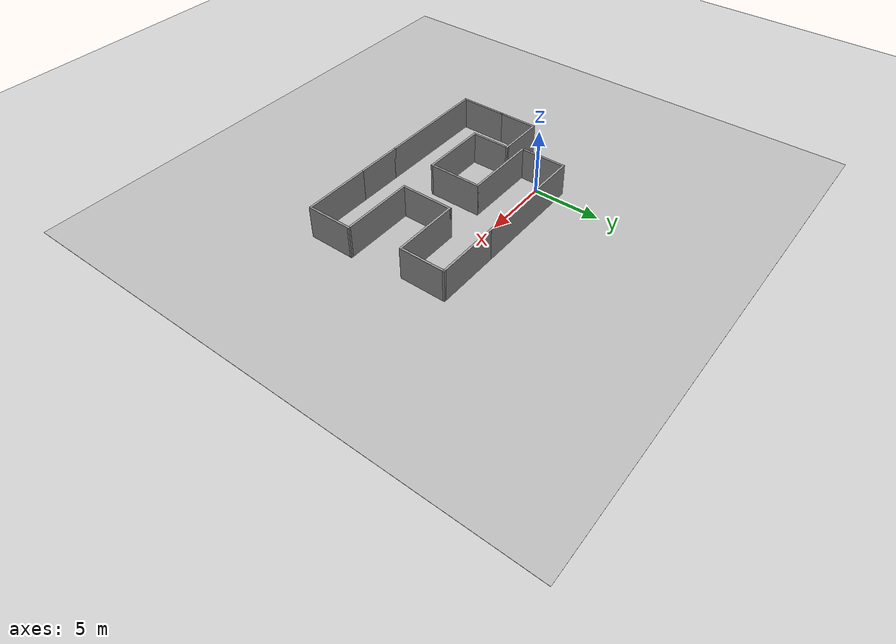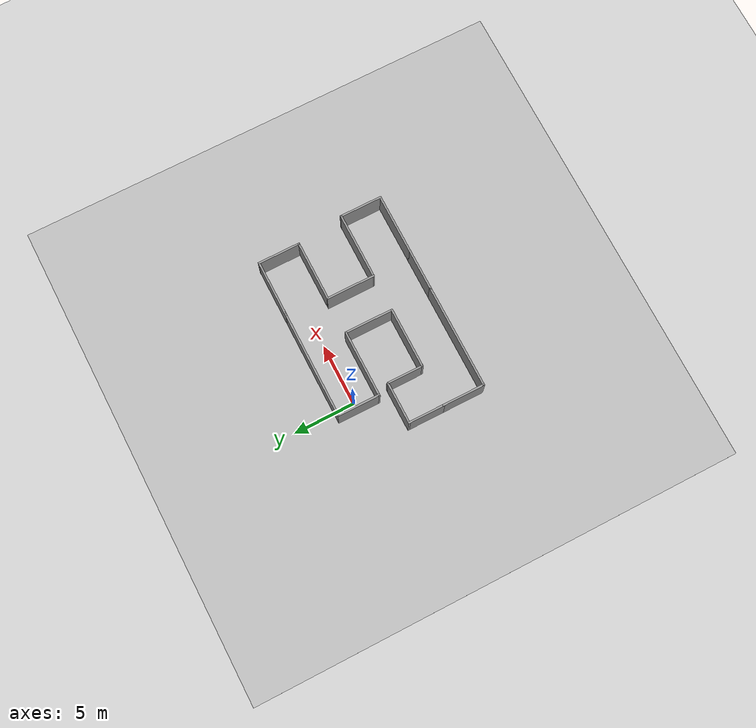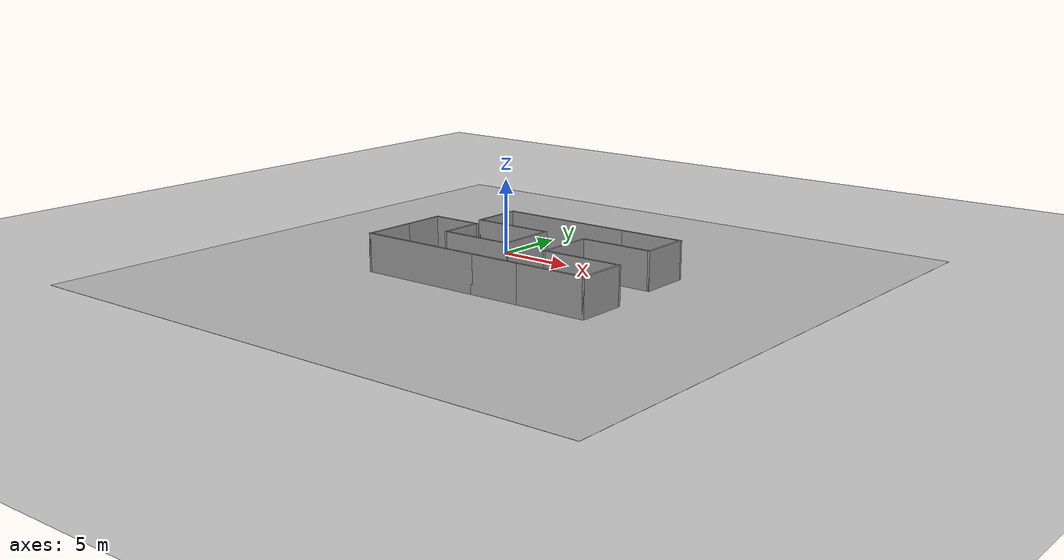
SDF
<sdf version="1.7">
 <world name="lab_world">
  <gravity>0 0 -9.8</gravity>
  <model name="ground_plane">
   <static>1</static>
   <link name="link">
    <collision name="collision">
     <geometry><plane><normal>0 0 1</normal><size>100 100</size></plane></geometry>
     <surface><friction><ode><mu>100</mu><mu2>50</mu2></ode></friction></surface>
    </collision>
    <visual name="visual">
     <cast_shadows>0</cast_shadows>
     <geometry><plane><normal>0 0 1</normal><size>100 100</size></plane></geometry>
     <material>
      <script><uri>file://media/materials/scripts/gazebo.material</uri><name>Gazebo/Grey</name></script>
     </material>
    </visual>
   </link>
  </model>
  <light name="sun" type="directional">
   <pose>0 0 10 0 -0 0</pose>
   <diffuse>0.8 0.8 0.8 1</diffuse>
   <specular>0.2 0.2 0.2 1</specular>
   <attenuation>
    <range>1000</range>
    <constant>0.9</constant>
    <linear>0.01</linear>
    <quadratic>0.001</quadratic>
   </attenuation>
   <direction>-0.5 0.1 -0.9</direction>
   <spot><inner_angle>0</inner_angle><outer_angle>0</outer_angle><falloff>0</falloff></spot>
  </light>
  <magnetic_field>6e-06 2.3e-05 -4.2e-05</magnetic_field>
  <atmosphere type="adiabatic"/>
  <physics type="ode">
   <max_step_size>0.001</max_step_size>
   <real_time_factor>1</real_time_factor>
   <real_time_update_rate>1000</real_time_update_rate>
  </physics>
  <scene><ambient>0.4 0.4 0.4 1</ambient><background>0.7 0.7 0.7 1</background><shadows>1</shadows></scene>
  <spherical_coordinates>
   <surface_model>EARTH_WGS84</surface_model>
   <latitude_deg>0</latitude_deg>
   <longitude_deg>0</longitude_deg>
   <elevation>0</elevation>
   <heading_deg>0</heading_deg>
  </spherical_coordinates>
  <model name="place3_0">
   <pose>4.675 -3.665 0 0 -0 0</pose>
   <link name="Wall_10">
    <collision name="Wall_10_Collision">
     <geometry><box><size>3.5 0.15 2.5</size></box></geometry>
     <pose>0 0 1.25 0 -0 0</pose>
    </collision>
    <visual name="Wall_10_Visual">
     <pose>0 0 1.25 0 -0 0</pose>
     <geometry><box><size>3.5 0.15 2.5</size></box></geometry>
     <material>
      <script><uri>file://media/materials/scripts/gazebo.material</uri><name>Gazebo/Grey</name></script>
      <ambient>1 1 1 1</ambient>
     </material>
     <meta><layer>0</layer></meta>
    </visual>
    <pose>-6.6 0.925 0 0 -0 3.14159</pose>
   </link>
   <link name="Wall_11">
    <collision name="Wall_11_Collision">
     <geometry><box><size>3 0.15 2.5</size></box></geometry>
     <pose>0 0 1.25 0 -0 0</pose>
    </collision>
    <visual name="Wall_11_Visual">
     <pose>0 0 1.25 0 -0 0</pose>
     <geometry><box><size>3 0.15 2.5</size></box></geometry>
     <material>
      <script><uri>file://media/materials/scripts/gazebo.material</uri><name>Gazebo/Grey</name></script>
      <ambient>1 1 1 1</ambient>
     </material>
     <meta><layer>0</layer></meta>
    </visual>
    <pose>-8.275 -0.5 0 0 -0 -1.5708</pose>
   </link>
   <link name="Wall_12">
    <collision name="Wall_12_Collision">
     <geometry><box><size>3.5 0.15 2.5</size></box></geometry>
     <pose>0 0 1.25 0 -0 0</pose>
    </collision>
    <visual name="Wall_12_Visual">
     <pose>0 0 1.25 0 -0 0</pose>
     <geometry><box><size>3.5 0.15 2.5</size></box></geometry>
     <material>
      <script><uri>file://media/materials/scripts/gazebo.material</uri><name>Gazebo/Grey</name></script>
      <ambient>1 1 1 1</ambient>
     </material>
     <meta><layer>0</layer></meta>
    </visual>
    <pose>-8.275 -3.6 0 0 -0 -1.5708</pose>
   </link>
   <link name="Wall_13">
    <collision name="Wall_13_Collision">
     <geometry><box><size>8.5 0.15 2.5</size></box></geometry>
     <pose>0 0 1.25 0 -0 0</pose>
    </collision>
    <visual name="Wall_13_Visual">
     <pose>0 0 1.25 0 -0 0</pose>
     <geometry><box><size>8.5 0.15 2.5</size></box></geometry>
     <material>
      <script><uri>file://media/materials/scripts/gazebo.material</uri><name>Gazebo/Grey</name></script>
      <ambient>1 1 1 1</ambient>
     </material>
     <meta><layer>0</layer></meta>
    </visual>
    <pose>-4.1 -5.275 0 0 -0 0</pose>
   </link>
   <link name="Wall_14">
    <collision name="Wall_14_Collision">
     <geometry><box><size>3.5 0.15 2.5</size></box></geometry>
     <pose>0 0 1.25 0 -0 0</pose>
    </collision>
    <visual name="Wall_14_Visual">
     <pose>0 0 1.25 0 -0 0</pose>
     <geometry><box><size>3.5 0.15 2.5</size></box></geometry>
     <material>
      <script><uri>file://media/materials/scripts/gazebo.material</uri><name>Gazebo/Grey</name></script>
      <ambient>1 1 1 1</ambient>
     </material>
     <meta><layer>0</layer></meta>
    </visual>
    <pose>1.75 -5.275 0 0 -0 0</pose>
   </link>
   <link name="Wall_15">
    <collision name="Wall_15_Collision">
     <geometry><box><size>5 0.15 2.5</size></box></geometry>
     <pose>0 0 1.25 0 -0 0</pose>
    </collision>
    <visual name="Wall_15_Visual">
     <pose>0 0 1.25 0 -0 0</pose>
     <geometry><box><size>5 0.15 2.5</size></box></geometry>
     <material>
      <script><uri>file://media/materials/scripts/gazebo.material</uri><name>Gazebo/Grey</name></script>
      <ambient>1 1 1 1</ambient>
     </material>
     <meta><layer>0</layer></meta>
    </visual>
    <pose>5.85 -5.275 0 0 -0 0</pose>
   </link>
   <link name="Wall_16">
    <collision name="Wall_16_Collision">
     <geometry><box><size>3.5 0.15 2.5</size></box></geometry>
     <pose>0 0 1.25 0 -0 0</pose>
    </collision>
    <visual name="Wall_16_Visual">
     <pose>0 0 1.25 0 -0 0</pose>
     <geometry><box><size>3.5 0.15 2.5</size></box></geometry>
     <material>
      <script><uri>file://media/materials/scripts/gazebo.material</uri><name>Gazebo/Grey</name></script>
      <ambient>1 1 1 1</ambient>
     </material>
     <meta><layer>0</layer></meta>
    </visual>
    <pose>8.275 -3.6 0 0 -0 1.5708</pose>
   </link>
   <link name="Wall_17">
    <collision name="Wall_17_Collision">
     <geometry><box><size>5.5 0.15 2.5</size></box></geometry>
     <pose>0 0 1.25 0 -0 0</pose>
    </collision>
    <visual name="Wall_17_Visual">
     <pose>0 0 1.25 0 -0 0</pose>
     <geometry><box><size>5.5 0.15 2.5</size></box></geometry>
     <material>
      <script><uri>file://media/materials/scripts/gazebo.material</uri><name>Gazebo/Grey</name></script>
      <ambient>1 1 1 1</ambient>
     </material>
     <meta><layer>0</layer></meta>
    </visual>
    <pose>5.6 -1.925 0 0 -0 3.14159</pose>
   </link>
   <link name="Wall_18">
    <collision name="Wall_18_Collision">
     <geometry><box><size>4 0.15 2.5</size></box></geometry>
     <pose>0 0 1.25 0 -0 0</pose>
    </collision>
    <visual name="Wall_18_Visual">
     <pose>0 0 1.25 0 -0 0</pose>
     <geometry><box><size>4 0.15 2.5</size></box></geometry>
     <material>
      <script><uri>file://media/materials/scripts/gazebo.material</uri><name>Gazebo/Grey</name></script>
      <ambient>1 1 1 1</ambient>
     </material>
     <meta><layer>0</layer></meta>
    </visual>
    <pose>2.925 0 0 0 -0 1.5708</pose>
   </link>
   <link name="Wall_19">
    <collision name="Wall_19_Collision">
     <geometry><box><size>5 0.15 2.5</size></box></geometry>
     <pose>0 0 1.25 0 -0 0</pose>
    </collision>
    <visual name="Wall_19_Visual">
     <pose>0 0 1.25 0 -0 0</pose>
     <geometry><box><size>5 0.15 2.5</size></box></geometry>
     <material>
      <script><uri>file://media/materials/scripts/gazebo.material</uri><name>Gazebo/Grey</name></script>
      <ambient>1 1 1 1</ambient>
     </material>
     <meta><layer>0</layer></meta>
    </visual>
    <pose>5.35 1.925 0 0 -0 0</pose>
   </link>
   <link name="Wall_20">
    <collision name="Wall_20_Collision">
     <geometry><box><size>3.5 0.15 2.5</size></box></geometry>
     <pose>0 0 1.25 0 -0 0</pose>
    </collision>
    <visual name="Wall_20_Visual">
     <pose>0 0 1.25 0 -0 0</pose>
     <geometry><box><size>3.5 0.15 2.5</size></box></geometry>
     <material>
      <script><uri>file://media/materials/scripts/gazebo.material</uri><name>Gazebo/Grey</name></script>
      <ambient>1 1 1 1</ambient>
     </material>
     <meta><layer>0</layer></meta>
    </visual>
    <pose>7.775 3.6 0 0 -0 1.5708</pose>
   </link>
   <link name="Wall_21">
    <collision name="Wall_21_Collision">
     <geometry><box><size>4.75 0.15 2.5</size></box></geometry>
     <pose>0 0 1.25 0 -0 0</pose>
    </collision>
    <visual name="Wall_21_Visual">
     <pose>0 0 1.25 0 -0 0</pose>
     <geometry><box><size>4.75 0.15 2.5</size></box></geometry>
     <material>
      <script><uri>file://media/materials/scripts/gazebo.material</uri><name>Gazebo/Grey</name></script>
      <ambient>1 1 1 1</ambient>
     </material>
     <meta><layer>0</layer></meta>
    </visual>
    <pose>5.475 5.275 0 0 -0 3.14159</pose>
   </link>
   <link name="Wall_3">
    <collision name="Wall_3_Collision">
     <geometry><box><size>3.5 0.15 2.5</size></box></geometry>
     <pose>0 0 1.25 0 -0 0</pose>
    </collision>
    <visual name="Wall_3_Visual">
     <pose>0 0 1.25 0 -0 0</pose>
     <geometry><box><size>3.5 0.15 2.5</size></box></geometry>
     <material>
      <script><uri>file://media/materials/scripts/gazebo.material</uri><name>Gazebo/Grey</name></script>
      <ambient>1 1 1 1</ambient>
     </material>
     <meta><layer>0</layer></meta>
    </visual>
    <pose>-5.425 3.6 0 0 -0 1.5708</pose>
   </link>
   <link name="Wall_4">
    <collision name="Wall_4_Collision">
     <geometry><box><size>9 0.15 2.5</size></box></geometry>
     <pose>0 0 1.25 0 -0 0</pose>
    </collision>
    <visual name="Wall_4_Visual">
     <pose>0 0 1.25 0 -0 0</pose>
     <geometry><box><size>9 0.15 2.5</size></box></geometry>
     <material>
      <script><uri>file://media/materials/scripts/gazebo.material</uri><name>Gazebo/Grey</name></script>
      <ambient>1 1 1 1</ambient>
     </material>
     <meta><layer>0</layer></meta>
    </visual>
    <pose>-1 5.275 0 0 -0 0</pose>
   </link>
   <link name="Wall_6">
    <collision name="Wall_6_Collision">
     <geometry><box><size>5.5 0.15 2.5</size></box></geometry>
     <pose>0 0 1.25 0 -0 0</pose>
    </collision>
    <visual name="Wall_6_Visual">
     <pose>0 0 1.25 0 -0 0</pose>
     <geometry><box><size>5.5 0.15 2.5</size></box></geometry>
     <material>
      <script><uri>file://media/materials/scripts/gazebo.material</uri><name>Gazebo/Grey</name></script>
      <ambient>1 1 1 1</ambient>
     </material>
     <meta><layer>0</layer></meta>
    </visual>
    <pose>-2.75 1.925 0 0 -0 0</pose>
   </link>
   <link name="Wall_7">
    <collision name="Wall_7_Collision">
     <geometry><box><size>4 0.15 2.5</size></box></geometry>
     <pose>0 0 1.25 0 -0 0</pose>
    </collision>
    <visual name="Wall_7_Visual">
     <pose>0 0 1.25 0 -0 0</pose>
     <geometry><box><size>4 0.15 2.5</size></box></geometry>
     <material>
      <script><uri>file://media/materials/scripts/gazebo.material</uri><name>Gazebo/Grey</name></script>
      <ambient>1 1 1 1</ambient>
     </material>
     <meta><layer>0</layer></meta>
    </visual>
    <pose>-0.075 0 0 0 -0 -1.5708</pose>
   </link>
   <link name="Wall_8">
    <collision name="Wall_8_Collision">
     <geometry><box><size>5 0.15 2.5</size></box></geometry>
     <pose>0 0 1.25 0 -0 0</pose>
    </collision>
    <visual name="Wall_8_Visual">
     <pose>0 0 1.25 0 -0 0</pose>
     <geometry><box><size>5 0.15 2.5</size></box></geometry>
     <material>
      <script><uri>file://media/materials/scripts/gazebo.material</uri><name>Gazebo/Grey</name></script>
      <ambient>1 1 1 1</ambient>
     </material>
     <meta><layer>0</layer></meta>
    </visual>
    <pose>-2.5 -1.925 0 0 -0 3.14159</pose>
   </link>
   <link name="Wall_9">
    <collision name="Wall_9_Collision">
     <geometry><box><size>3 0.15 2.5</size></box></geometry>
     <pose>0 0 1.25 0 -0 0</pose>
    </collision>
    <visual name="Wall_9_Visual">
     <pose>0 0 1.25 0 -0 0</pose>
     <geometry><box><size>3 0.15 2.5</size></box></geometry>
     <material>
      <script><uri>file://media/materials/scripts/gazebo.material</uri><name>Gazebo/Grey</name></script>
      <ambient>1 1 1 1</ambient>
     </material>
     <meta><layer>0</layer></meta>
    </visual>
    <pose>-4.925 -0.5 0 0 -0 1.5708</pose>
   </link>
   <static>1</static>
  </model>
  <model name="Floor">
   <link name="main">
    <pose>0 0 0.01 0 -0 0</pose>
    <collision name="main_Collision"><geometry><box><size>40 40 0.01</size></box></geometry></collision>
    <visual name="main_Visual">
     <geometry><box><size>40 40 0.01</size></box></geometry>
     <material>
      <script>
       <uri>model://Floor/materials/scripts</uri>
       <uri>model://Floor/materials/textures</uri>
       <name>floor</name>
      </script>
     </material>
    </visual>
   </link>
   <static>1</static>
   <pose>3.575 -3.58526 0 0 -0 0</pose>
  </model>
 </world>
</sdf>
